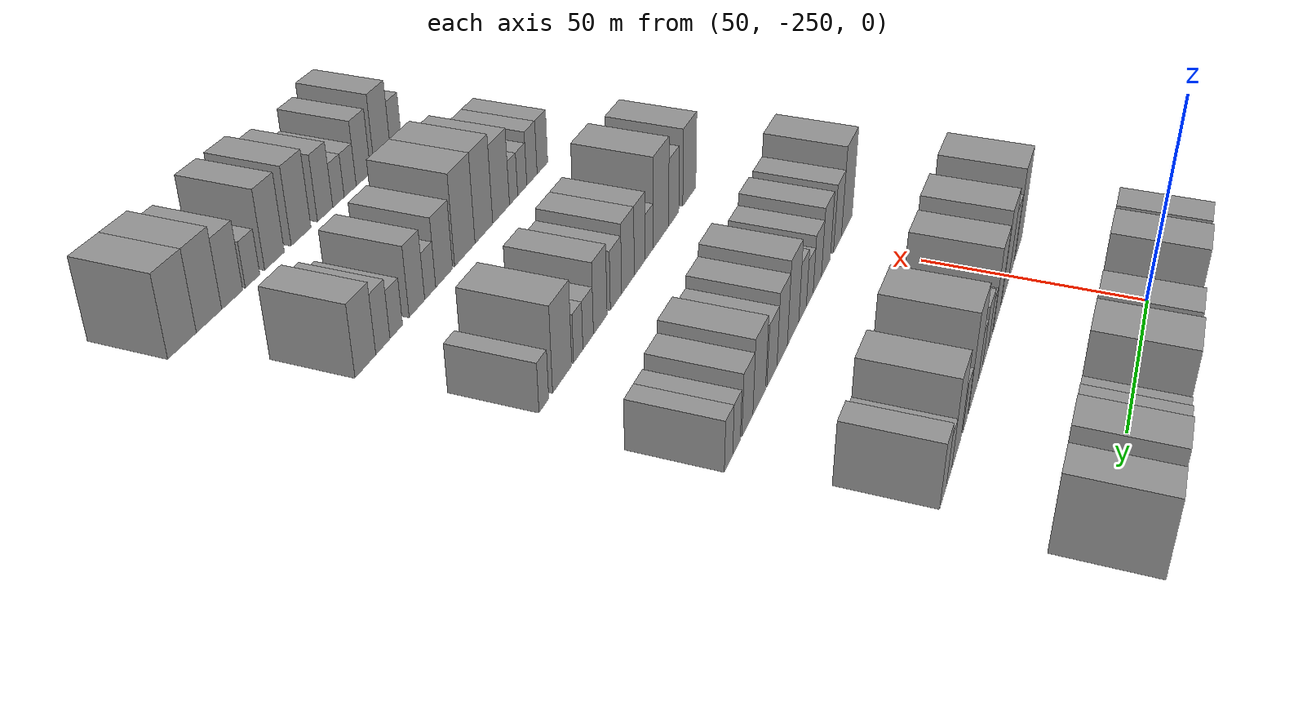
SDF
<sdf version="1.6">
 <world name="default">
  <model name="building_39">
   <static>1</static>
   <pose>50.0000 -256.7298 0 0.000000 0.000000 0.000000</pose>
   <link name="link">
    <pose>0 0 10.50 0 0 0</pose>
    <collision name="collision"><geometry><box><size>20.0000 8.8016 21.0000</size></box></geometry></collision>
    <visual name="visual">
     <cast_shadows>0</cast_shadows>
     <geometry><box><size>20.0000 8.8016 21.0000</size></box></geometry>
     <material>
      <script>
       <uri>model://grey_wall/materials/scripts</uri>
       <uri>model://grey_wall/materials/textures</uri>
       <name>vrc/grey_wall</name>
      </script>
     </material>
    </visual>
   </link>
  </model>
  <model name="building_40">
   <static>1</static>
   <pose>50.0000 -248.9597 0 0.000000 0.000000 0.000000</pose>
   <link name="link">
    <pose>0 0 7.50 0 0 0</pose>
    <collision name="collision"><geometry><box><size>20.0000 6.7386 15.0000</size></box></geometry></collision>
    <visual name="visual">
     <cast_shadows>0</cast_shadows>
     <geometry><box><size>20.0000 6.7386 15.0000</size></box></geometry>
     <material>
      <script>
       <uri>model://grey_wall/materials/scripts</uri>
       <uri>model://grey_wall/materials/textures</uri>
       <name>vrc/grey_wall</name>
      </script>
     </material>
    </visual>
   </link>
  </model>
  <model name="building_41">
   <static>1</static>
   <pose>50.0000 -240.0426 0 0.000000 0.000000 0.000000</pose>
   <link name="link">
    <pose>0 0 12.00 0 0 0</pose>
    <collision name="collision"><geometry><box><size>20.0000 11.0955 24.0000</size></box></geometry></collision>
    <visual name="visual">
     <cast_shadows>0</cast_shadows>
     <geometry><box><size>20.0000 11.0955 24.0000</size></box></geometry>
     <material>
      <script>
       <uri>model://grey_wall/materials/scripts</uri>
       <uri>model://grey_wall/materials/textures</uri>
       <name>vrc/grey_wall</name>
      </script>
     </material>
    </visual>
   </link>
  </model>
  <model name="building_42">
   <static>1</static>
   <pose>50.0000 -231.9525 0 0.000000 0.000000 0.000000</pose>
   <link name="link">
    <pose>0 0 6.00 0 0 0</pose>
    <collision name="collision"><geometry><box><size>20.0000 5.0847 12.0000</size></box></geometry></collision>
    <visual name="visual">
     <cast_shadows>0</cast_shadows>
     <geometry><box><size>20.0000 5.0847 12.0000</size></box></geometry>
     <material>
      <script>
       <uri>model://grey_wall/materials/scripts</uri>
       <uri>model://grey_wall/materials/textures</uri>
       <name>vrc/grey_wall</name>
      </script>
     </material>
    </visual>
   </link>
  </model>
  <model name="building_43">
   <static>1</static>
   <pose>50.0000 -226.9144 0 0.000000 0.000000 0.000000</pose>
   <link name="link">
    <pose>0 0 6.00 0 0 0</pose>
    <collision name="collision"><geometry><box><size>20.0000 4.9913 12.0000</size></box></geometry></collision>
    <visual name="visual">
     <cast_shadows>0</cast_shadows>
     <geometry><box><size>20.0000 4.9913 12.0000</size></box></geometry>
     <material>
      <script>
       <uri>model://grey_wall/materials/scripts</uri>
       <uri>model://grey_wall/materials/textures</uri>
       <name>vrc/grey_wall</name>
      </script>
     </material>
    </visual>
   </link>
  </model>
  <model name="building_44">
   <static>1</static>
   <pose>50.0000 -219.6413 0 0.000000 0.000000 0.000000</pose>
   <link name="link">
    <pose>0 0 10.50 0 0 0</pose>
    <collision name="collision"><geometry><box><size>20.0000 9.5550 21.0000</size></box></geometry></collision>
    <visual name="visual">
     <cast_shadows>0</cast_shadows>
     <geometry><box><size>20.0000 9.5550 21.0000</size></box></geometry>
     <material>
      <script>
       <uri>model://grey_wall/materials/scripts</uri>
       <uri>model://grey_wall/materials/textures</uri>
       <name>vrc/grey_wall</name>
      </script>
     </material>
    </visual>
   </link>
  </model>
  <model name="building_45">
   <static>1</static>
   <pose>50.0000 -212.1446 0 0.000000 0.000000 0.000000</pose>
   <link name="link">
    <pose>0 0 6.00 0 0 0</pose>
    <collision name="collision"><geometry><box><size>20.0000 5.4385 12.0000</size></box></geometry></collision>
    <visual name="visual">
     <cast_shadows>0</cast_shadows>
     <geometry><box><size>20.0000 5.4385 12.0000</size></box></geometry>
     <material>
      <script>
       <uri>model://grey_wall/materials/scripts</uri>
       <uri>model://grey_wall/materials/textures</uri>
       <name>vrc/grey_wall</name>
      </script>
     </material>
    </visual>
   </link>
  </model>
  <model name="building_46">
   <static>1</static>
   <pose>50.0000 -202.5630 0 0.000000 0.000000 0.000000</pose>
   <link name="link">
    <pose>0 0 12.00 0 0 0</pose>
    <collision name="collision"><geometry><box><size>20.0000 11.7247 24.0000</size></box></geometry></collision>
    <visual name="visual">
     <cast_shadows>0</cast_shadows>
     <geometry><box><size>20.0000 11.7247 24.0000</size></box></geometry>
     <material>
      <script>
       <uri>model://grey_wall/materials/scripts</uri>
       <uri>model://grey_wall/materials/textures</uri>
       <name>vrc/grey_wall</name>
      </script>
     </material>
    </visual>
   </link>
  </model>
  <model name="building_47">
   <static>1</static>
   <pose>50.0000 -191.1888 0 0.000000 0.000000 0.000000</pose>
   <link name="link">
    <pose>0 0 7.50 0 0 0</pose>
    <collision name="collision"><geometry><box><size>20.0000 7.0238 15.0000</size></box></geometry></collision>
    <visual name="visual">
     <cast_shadows>0</cast_shadows>
     <geometry><box><size>20.0000 7.0238 15.0000</size></box></geometry>
     <material>
      <script>
       <uri>model://grey_wall/materials/scripts</uri>
       <uri>model://grey_wall/materials/textures</uri>
       <name>vrc/grey_wall</name>
      </script>
     </material>
    </visual>
   </link>
  </model>
  <model name="building_48">
   <static>1</static>
   <pose>50.0000 -183.8771 0 0.000000 0.000000 0.000000</pose>
   <link name="link">
    <pose>0 0 9.00 0 0 0</pose>
    <collision name="collision"><geometry><box><size>20.0000 7.5996 18.0000</size></box></geometry></collision>
    <visual name="visual">
     <cast_shadows>0</cast_shadows>
     <geometry><box><size>20.0000 7.5996 18.0000</size></box></geometry>
     <material>
      <script>
       <uri>model://grey_wall/materials/scripts</uri>
       <uri>model://grey_wall/materials/textures</uri>
       <name>vrc/grey_wall</name>
      </script>
     </material>
    </visual>
   </link>
  </model>
  <model name="building_49">
   <static>1</static>
   <pose>50.0000 -175.2569 0 0.000000 0.000000 0.000000</pose>
   <link name="link">
    <pose>0 0 10.50 0 0 0</pose>
    <collision name="collision"><geometry><box><size>20.0000 9.6407 21.0000</size></box></geometry></collision>
    <visual name="visual">
     <cast_shadows>0</cast_shadows>
     <geometry><box><size>20.0000 9.6407 21.0000</size></box></geometry>
     <material>
      <script>
       <uri>model://grey_wall/materials/scripts</uri>
       <uri>model://grey_wall/materials/textures</uri>
       <name>vrc/grey_wall</name>
      </script>
     </material>
    </visual>
   </link>
  </model>
  <model name="building_50">
   <static>1</static>
   <pose>50.0000 -164.9805 0 0.000000 0.000000 0.000000</pose>
   <link name="link">
    <pose>0 0 9.00 0 0 0</pose>
    <collision name="collision"><geometry><box><size>20.0000 8.9122 18.0000</size></box></geometry></collision>
    <visual name="visual">
     <cast_shadows>0</cast_shadows>
     <geometry><box><size>20.0000 8.9122 18.0000</size></box></geometry>
     <material>
      <script>
       <uri>model://grey_wall/materials/scripts</uri>
       <uri>model://grey_wall/materials/textures</uri>
       <name>vrc/grey_wall</name>
      </script>
     </material>
    </visual>
   </link>
  </model>
  <model name="building_167">
   <static>1</static>
   <pose>90.0000 -263.0146 0 0.000000 0.000000 0.000000</pose>
   <link name="link">
    <pose>0 0 12.00 0 0 0</pose>
    <collision name="collision"><geometry><box><size>20.0000 11.8936 24.0000</size></box></geometry></collision>
    <visual name="visual">
     <cast_shadows>0</cast_shadows>
     <geometry><box><size>20.0000 11.8936 24.0000</size></box></geometry>
     <material>
      <script>
       <uri>model://grey_wall/materials/scripts</uri>
       <uri>model://grey_wall/materials/textures</uri>
       <name>vrc/grey_wall</name>
      </script>
     </material>
    </visual>
   </link>
  </model>
  <model name="building_168">
   <static>1</static>
   <pose>90.0000 -251.8723 0 0.000000 0.000000 0.000000</pose>
   <link name="link">
    <pose>0 0 9.00 0 0 0</pose>
    <collision name="collision"><geometry><box><size>20.0000 8.3909 18.0000</size></box></geometry></collision>
    <visual name="visual">
     <cast_shadows>0</cast_shadows>
     <geometry><box><size>20.0000 8.3909 18.0000</size></box></geometry>
     <material>
      <script>
       <uri>model://grey_wall/materials/scripts</uri>
       <uri>model://grey_wall/materials/textures</uri>
       <name>vrc/grey_wall</name>
      </script>
     </material>
    </visual>
   </link>
  </model>
  <model name="building_169">
   <static>1</static>
   <pose>90.0000 -242.3842 0 0.000000 0.000000 0.000000</pose>
   <link name="link">
    <pose>0 0 12.00 0 0 0</pose>
    <collision name="collision"><geometry><box><size>20.0000 10.5854 24.0000</size></box></geometry></collision>
    <visual name="visual">
     <cast_shadows>0</cast_shadows>
     <geometry><box><size>20.0000 10.5854 24.0000</size></box></geometry>
     <material>
      <script>
       <uri>model://grey_wall/materials/scripts</uri>
       <uri>model://grey_wall/materials/textures</uri>
       <name>vrc/grey_wall</name>
      </script>
     </material>
    </visual>
   </link>
  </model>
  <model name="building_170">
   <static>1</static>
   <pose>90.0000 -231.0860 0 0.000000 0.000000 0.000000</pose>
   <link name="link">
    <pose>0 0 10.50 0 0 0</pose>
    <collision name="collision"><geometry><box><size>20.0000 10.0109 21.0000</size></box></geometry></collision>
    <visual name="visual">
     <cast_shadows>0</cast_shadows>
     <geometry><box><size>20.0000 10.0109 21.0000</size></box></geometry>
     <material>
      <script>
       <uri>model://grey_wall/materials/scripts</uri>
       <uri>model://grey_wall/materials/textures</uri>
       <name>vrc/grey_wall</name>
      </script>
     </material>
    </visual>
   </link>
  </model>
  <model name="building_171">
   <static>1</static>
   <pose>90.0000 -222.4510 0 0.000000 0.000000 0.000000</pose>
   <link name="link">
    <pose>0 0 6.00 0 0 0</pose>
    <collision name="collision"><geometry><box><size>20.0000 5.2591 12.0000</size></box></geometry></collision>
    <visual name="visual">
     <cast_shadows>0</cast_shadows>
     <geometry><box><size>20.0000 5.2591 12.0000</size></box></geometry>
     <material>
      <script>
       <uri>model://grey_wall/materials/scripts</uri>
       <uri>model://grey_wall/materials/textures</uri>
       <name>vrc/grey_wall</name>
      </script>
     </material>
    </visual>
   </link>
  </model>
  <model name="building_172">
   <static>1</static>
   <pose>90.0000 -216.1184 0 0.000000 0.000000 0.000000</pose>
   <link name="link">
    <pose>0 0 7.50 0 0 0</pose>
    <collision name="collision"><geometry><box><size>20.0000 7.4061 15.0000</size></box></geometry></collision>
    <visual name="visual">
     <cast_shadows>0</cast_shadows>
     <geometry><box><size>20.0000 7.4061 15.0000</size></box></geometry>
     <material>
      <script>
       <uri>model://grey_wall/materials/scripts</uri>
       <uri>model://grey_wall/materials/textures</uri>
       <name>vrc/grey_wall</name>
      </script>
     </material>
    </visual>
   </link>
  </model>
  <model name="building_173">
   <static>1</static>
   <pose>90.0000 -209.7845 0 0.000000 0.000000 0.000000</pose>
   <link name="link">
    <pose>0 0 6.00 0 0 0</pose>
    <collision name="collision"><geometry><box><size>20.0000 5.2618 12.0000</size></box></geometry></collision>
    <visual name="visual">
     <cast_shadows>0</cast_shadows>
     <geometry><box><size>20.0000 5.2618 12.0000</size></box></geometry>
     <material>
      <script>
       <uri>model://grey_wall/materials/scripts</uri>
       <uri>model://grey_wall/materials/textures</uri>
       <name>vrc/grey_wall</name>
      </script>
     </material>
    </visual>
   </link>
  </model>
  <model name="building_174">
   <static>1</static>
   <pose>90.0000 -201.4237 0 0.000000 0.000000 0.000000</pose>
   <link name="link">
    <pose>0 0 12.00 0 0 0</pose>
    <collision name="collision"><geometry><box><size>20.0000 11.4596 24.0000</size></box></geometry></collision>
    <visual name="visual">
     <cast_shadows>0</cast_shadows>
     <geometry><box><size>20.0000 11.4596 24.0000</size></box></geometry>
     <material>
      <script>
       <uri>model://grey_wall/materials/scripts</uri>
       <uri>model://grey_wall/materials/textures</uri>
       <name>vrc/grey_wall</name>
      </script>
     </material>
    </visual>
   </link>
  </model>
  <model name="building_175">
   <static>1</static>
   <pose>90.0000 -192.0570 0 0.000000 0.000000 0.000000</pose>
   <link name="link">
    <pose>0 0 6.00 0 0 0</pose>
    <collision name="collision"><geometry><box><size>20.0000 5.2739 12.0000</size></box></geometry></collision>
    <visual name="visual">
     <cast_shadows>0</cast_shadows>
     <geometry><box><size>20.0000 5.2739 12.0000</size></box></geometry>
     <material>
      <script>
       <uri>model://grey_wall/materials/scripts</uri>
       <uri>model://grey_wall/materials/textures</uri>
       <name>vrc/grey_wall</name>
      </script>
     </material>
    </visual>
   </link>
  </model>
  <model name="building_176">
   <static>1</static>
   <pose>90.0000 -182.5187 0 0.000000 0.000000 0.000000</pose>
   <link name="link">
    <pose>0 0 10.50 0 0 0</pose>
    <collision name="collision"><geometry><box><size>20.0000 9.8026 21.0000</size></box></geometry></collision>
    <visual name="visual">
     <cast_shadows>0</cast_shadows>
     <geometry><box><size>20.0000 9.8026 21.0000</size></box></geometry>
     <material>
      <script>
       <uri>model://grey_wall/materials/scripts</uri>
       <uri>model://grey_wall/materials/textures</uri>
       <name>vrc/grey_wall</name>
      </script>
     </material>
    </visual>
   </link>
  </model>
  <model name="building_177">
   <static>1</static>
   <pose>90.0000 -174.9093 0 0.000000 0.000000 0.000000</pose>
   <link name="link">
    <pose>0 0 6.00 0 0 0</pose>
    <collision name="collision"><geometry><box><size>20.0000 5.4163 12.0000</size></box></geometry></collision>
    <visual name="visual">
     <cast_shadows>0</cast_shadows>
     <geometry><box><size>20.0000 5.4163 12.0000</size></box></geometry>
     <material>
      <script>
       <uri>model://grey_wall/materials/scripts</uri>
       <uri>model://grey_wall/materials/textures</uri>
       <name>vrc/grey_wall</name>
      </script>
     </material>
    </visual>
   </link>
  </model>
  <model name="building_178">
   <static>1</static>
   <pose>90.0000 -168.9414 0 0.000000 0.000000 0.000000</pose>
   <link name="link">
    <pose>0 0 7.50 0 0 0</pose>
    <collision name="collision"><geometry><box><size>20.0000 6.5194 15.0000</size></box></geometry></collision>
    <visual name="visual">
     <cast_shadows>0</cast_shadows>
     <geometry><box><size>20.0000 6.5194 15.0000</size></box></geometry>
     <material>
      <script>
       <uri>model://grey_wall/materials/scripts</uri>
       <uri>model://grey_wall/materials/textures</uri>
       <name>vrc/grey_wall</name>
      </script>
     </material>
    </visual>
   </link>
  </model>
  <model name="building_309">
   <static>1</static>
   <pose>130.0000 -259.5459 0 0.000000 0.000000 0.000000</pose>
   <link name="link">
    <pose>0 0 12.00 0 0 0</pose>
    <collision name="collision"><geometry><box><size>20.0000 10.7880 24.0000</size></box></geometry></collision>
    <visual name="visual">
     <cast_shadows>0</cast_shadows>
     <geometry><box><size>20.0000 10.7880 24.0000</size></box></geometry>
     <material>
      <script>
       <uri>model://grey_wall/materials/scripts</uri>
       <uri>model://grey_wall/materials/textures</uri>
       <name>vrc/grey_wall</name>
      </script>
     </material>
    </visual>
   </link>
  </model>
  <model name="building_310">
   <static>1</static>
   <pose>130.0000 -250.3165 0 0.000000 0.000000 0.000000</pose>
   <link name="link">
    <pose>0 0 9.00 0 0 0</pose>
    <collision name="collision"><geometry><box><size>20.0000 7.6708 18.0000</size></box></geometry></collision>
    <visual name="visual">
     <cast_shadows>0</cast_shadows>
     <geometry><box><size>20.0000 7.6708 18.0000</size></box></geometry>
     <material>
      <script>
       <uri>model://grey_wall/materials/scripts</uri>
       <uri>model://grey_wall/materials/textures</uri>
       <name>vrc/grey_wall</name>
      </script>
     </material>
    </visual>
   </link>
  </model>
  <model name="building_311">
   <static>1</static>
   <pose>130.0000 -239.3849 0 0.000000 0.000000 0.000000</pose>
   <link name="link">
    <pose>0 0 9.00 0 0 0</pose>
    <collision name="collision"><geometry><box><size>20.0000 8.1924 18.0000</size></box></geometry></collision>
    <visual name="visual">
     <cast_shadows>0</cast_shadows>
     <geometry><box><size>20.0000 8.1924 18.0000</size></box></geometry>
     <material>
      <script>
       <uri>model://grey_wall/materials/scripts</uri>
       <uri>model://grey_wall/materials/textures</uri>
       <name>vrc/grey_wall</name>
      </script>
     </material>
    </visual>
   </link>
  </model>
  <model name="building_312">
   <static>1</static>
   <pose>130.0000 -231.6470 0 0.000000 0.000000 0.000000</pose>
   <link name="link">
    <pose>0 0 7.50 0 0 0</pose>
    <collision name="collision"><geometry><box><size>20.0000 7.2834 15.0000</size></box></geometry></collision>
    <visual name="visual">
     <cast_shadows>0</cast_shadows>
     <geometry><box><size>20.0000 7.2834 15.0000</size></box></geometry>
     <material>
      <script>
       <uri>model://grey_wall/materials/scripts</uri>
       <uri>model://grey_wall/materials/textures</uri>
       <name>vrc/grey_wall</name>
      </script>
     </material>
    </visual>
   </link>
  </model>
  <model name="building_313">
   <static>1</static>
   <pose>130.0000 -225.0626 0 0.000000 0.000000 0.000000</pose>
   <link name="link">
    <pose>0 0 6.00 0 0 0</pose>
    <collision name="collision"><geometry><box><size>20.0000 5.8854 12.0000</size></box></geometry></collision>
    <visual name="visual">
     <cast_shadows>0</cast_shadows>
     <geometry><box><size>20.0000 5.8854 12.0000</size></box></geometry>
     <material>
      <script>
       <uri>model://grey_wall/materials/scripts</uri>
       <uri>model://grey_wall/materials/textures</uri>
       <name>vrc/grey_wall</name>
      </script>
     </material>
    </visual>
   </link>
  </model>
  <model name="building_314">
   <static>1</static>
   <pose>130.0000 -218.9593 0 0.000000 0.000000 0.000000</pose>
   <link name="link">
    <pose>0 0 7.50 0 0 0</pose>
    <collision name="collision"><geometry><box><size>20.0000 6.3211 15.0000</size></box></geometry></collision>
    <visual name="visual">
     <cast_shadows>0</cast_shadows>
     <geometry><box><size>20.0000 6.3211 15.0000</size></box></geometry>
     <material>
      <script>
       <uri>model://grey_wall/materials/scripts</uri>
       <uri>model://grey_wall/materials/textures</uri>
       <name>vrc/grey_wall</name>
      </script>
     </material>
    </visual>
   </link>
  </model>
  <model name="building_315">
   <static>1</static>
   <pose>130.0000 -211.2364 0 0.000000 0.000000 0.000000</pose>
   <link name="link">
    <pose>0 0 10.50 0 0 0</pose>
    <collision name="collision"><geometry><box><size>20.0000 9.1247 21.0000</size></box></geometry></collision>
    <visual name="visual">
     <cast_shadows>0</cast_shadows>
     <geometry><box><size>20.0000 9.1247 21.0000</size></box></geometry>
     <material>
      <script>
       <uri>model://grey_wall/materials/scripts</uri>
       <uri>model://grey_wall/materials/textures</uri>
       <name>vrc/grey_wall</name>
      </script>
     </material>
    </visual>
   </link>
  </model>
  <model name="building_316">
   <static>1</static>
   <pose>130.0000 -202.6644 0 0.000000 0.000000 0.000000</pose>
   <link name="link">
    <pose>0 0 9.00 0 0 0</pose>
    <collision name="collision"><geometry><box><size>20.0000 8.0192 18.0000</size></box></geometry></collision>
    <visual name="visual">
     <cast_shadows>0</cast_shadows>
     <geometry><box><size>20.0000 8.0192 18.0000</size></box></geometry>
     <material>
      <script>
       <uri>model://grey_wall/materials/scripts</uri>
       <uri>model://grey_wall/materials/textures</uri>
       <name>vrc/grey_wall</name>
      </script>
     </material>
    </visual>
   </link>
  </model>
  <model name="building_317">
   <static>1</static>
   <pose>130.0000 -194.9638 0 0.000000 0.000000 0.000000</pose>
   <link name="link">
    <pose>0 0 7.50 0 0 0</pose>
    <collision name="collision"><geometry><box><size>20.0000 7.3819 15.0000</size></box></geometry></collision>
    <visual name="visual">
     <cast_shadows>0</cast_shadows>
     <geometry><box><size>20.0000 7.3819 15.0000</size></box></geometry>
     <material>
      <script>
       <uri>model://grey_wall/materials/scripts</uri>
       <uri>model://grey_wall/materials/textures</uri>
       <name>vrc/grey_wall</name>
      </script>
     </material>
    </visual>
   </link>
  </model>
  <model name="building_318">
   <static>1</static>
   <pose>130.0000 -185.8036 0 0.000000 0.000000 0.000000</pose>
   <link name="link">
    <pose>0 0 9.00 0 0 0</pose>
    <collision name="collision"><geometry><box><size>20.0000 8.9386 18.0000</size></box></geometry></collision>
    <visual name="visual">
     <cast_shadows>0</cast_shadows>
     <geometry><box><size>20.0000 8.9386 18.0000</size></box></geometry>
     <material>
      <script>
       <uri>model://grey_wall/materials/scripts</uri>
       <uri>model://grey_wall/materials/textures</uri>
       <name>vrc/grey_wall</name>
      </script>
     </material>
    </visual>
   </link>
  </model>
  <model name="building_319">
   <static>1</static>
   <pose>130.0000 -177.5914 0 0.000000 0.000000 0.000000</pose>
   <link name="link">
    <pose>0 0 7.50 0 0 0</pose>
    <collision name="collision"><geometry><box><size>20.0000 7.4857 15.0000</size></box></geometry></collision>
    <visual name="visual">
     <cast_shadows>0</cast_shadows>
     <geometry><box><size>20.0000 7.4857 15.0000</size></box></geometry>
     <material>
      <script>
       <uri>model://grey_wall/materials/scripts</uri>
       <uri>model://grey_wall/materials/textures</uri>
       <name>vrc/grey_wall</name>
      </script>
     </material>
    </visual>
   </link>
  </model>
  <model name="building_320">
   <static>1</static>
   <pose>130.0000 -170.3745 0 0.000000 0.000000 0.000000</pose>
   <link name="link">
    <pose>0 0 6.00 0 0 0</pose>
    <collision name="collision"><geometry><box><size>20.0000 4.9482 12.0000</size></box></geometry></collision>
    <visual name="visual">
     <cast_shadows>0</cast_shadows>
     <geometry><box><size>20.0000 4.9482 12.0000</size></box></geometry>
     <material>
      <script>
       <uri>model://grey_wall/materials/scripts</uri>
       <uri>model://grey_wall/materials/textures</uri>
       <name>vrc/grey_wall</name>
      </script>
     </material>
    </visual>
   </link>
  </model>
  <model name="building_321">
   <static>1</static>
   <pose>130.0000 -165.2555 0 0.000000 0.000000 0.000000</pose>
   <link name="link">
    <pose>0 0 6.00 0 0 0</pose>
    <collision name="collision"><geometry><box><size>20.0000 5.2898 12.0000</size></box></geometry></collision>
    <visual name="visual">
     <cast_shadows>0</cast_shadows>
     <geometry><box><size>20.0000 5.2898 12.0000</size></box></geometry>
     <material>
      <script>
       <uri>model://grey_wall/materials/scripts</uri>
       <uri>model://grey_wall/materials/textures</uri>
       <name>vrc/grey_wall</name>
      </script>
     </material>
    </visual>
   </link>
  </model>
  <model name="building_448">
   <static>1</static>
   <pose>170.0000 -260.7798 0 0.000000 0.000000 0.000000</pose>
   <link name="link">
    <pose>0 0 10.50 0 0 0</pose>
    <collision name="collision"><geometry><box><size>20.0000 9.9936 21.0000</size></box></geometry></collision>
    <visual name="visual">
     <cast_shadows>0</cast_shadows>
     <geometry><box><size>20.0000 9.9936 21.0000</size></box></geometry>
     <material>
      <script>
       <uri>model://grey_wall/materials/scripts</uri>
       <uri>model://grey_wall/materials/textures</uri>
       <name>vrc/grey_wall</name>
      </script>
     </material>
    </visual>
   </link>
  </model>
  <model name="building_449">
   <static>1</static>
   <pose>170.0000 -249.1024 0 0.000000 0.000000 0.000000</pose>
   <link name="link">
    <pose>0 0 9.00 0 0 0</pose>
    <collision name="collision"><geometry><box><size>20.0000 7.3612 18.0000</size></box></geometry></collision>
    <visual name="visual">
     <cast_shadows>0</cast_shadows>
     <geometry><box><size>20.0000 7.3612 18.0000</size></box></geometry>
     <material>
      <script>
       <uri>model://grey_wall/materials/scripts</uri>
       <uri>model://grey_wall/materials/textures</uri>
       <name>vrc/grey_wall</name>
      </script>
     </material>
    </visual>
   </link>
  </model>
  <model name="building_450">
   <static>1</static>
   <pose>170.0000 -239.9937 0 0.000000 0.000000 0.000000</pose>
   <link name="link">
    <pose>0 0 12.00 0 0 0</pose>
    <collision name="collision"><geometry><box><size>20.0000 10.8562 24.0000</size></box></geometry></collision>
    <visual name="visual">
     <cast_shadows>0</cast_shadows>
     <geometry><box><size>20.0000 10.8562 24.0000</size></box></geometry>
     <material>
      <script>
       <uri>model://grey_wall/materials/scripts</uri>
       <uri>model://grey_wall/materials/textures</uri>
       <name>vrc/grey_wall</name>
      </script>
     </material>
    </visual>
   </link>
  </model>
  <model name="building_451">
   <static>1</static>
   <pose>170.0000 -231.8443 0 0.000000 0.000000 0.000000</pose>
   <link name="link">
    <pose>0 0 6.00 0 0 0</pose>
    <collision name="collision"><geometry><box><size>20.0000 5.4425 12.0000</size></box></geometry></collision>
    <visual name="visual">
     <cast_shadows>0</cast_shadows>
     <geometry><box><size>20.0000 5.4425 12.0000</size></box></geometry>
     <material>
      <script>
       <uri>model://grey_wall/materials/scripts</uri>
       <uri>model://grey_wall/materials/textures</uri>
       <name>vrc/grey_wall</name>
      </script>
     </material>
    </visual>
   </link>
  </model>
  <model name="building_452">
   <static>1</static>
   <pose>170.0000 -225.4843 0 0.000000 0.000000 0.000000</pose>
   <link name="link">
    <pose>0 0 9.00 0 0 0</pose>
    <collision name="collision"><geometry><box><size>20.0000 7.2774 18.0000</size></box></geometry></collision>
    <visual name="visual">
     <cast_shadows>0</cast_shadows>
     <geometry><box><size>20.0000 7.2774 18.0000</size></box></geometry>
     <material>
      <script>
       <uri>model://grey_wall/materials/scripts</uri>
       <uri>model://grey_wall/materials/textures</uri>
       <name>vrc/grey_wall</name>
      </script>
     </material>
    </visual>
   </link>
  </model>
  <model name="building_453">
   <static>1</static>
   <pose>170.0000 -217.8162 0 0.000000 0.000000 0.000000</pose>
   <link name="link">
    <pose>0 0 9.00 0 0 0</pose>
    <collision name="collision"><geometry><box><size>20.0000 8.0588 18.0000</size></box></geometry></collision>
    <visual name="visual">
     <cast_shadows>0</cast_shadows>
     <geometry><box><size>20.0000 8.0588 18.0000</size></box></geometry>
     <material>
      <script>
       <uri>model://grey_wall/materials/scripts</uri>
       <uri>model://grey_wall/materials/textures</uri>
       <name>vrc/grey_wall</name>
      </script>
     </material>
    </visual>
   </link>
  </model>
  <model name="building_454">
   <static>1</static>
   <pose>170.0000 -210.3371 0 0.000000 0.000000 0.000000</pose>
   <link name="link">
    <pose>0 0 7.50 0 0 0</pose>
    <collision name="collision"><geometry><box><size>20.0000 6.8994 15.0000</size></box></geometry></collision>
    <visual name="visual">
     <cast_shadows>0</cast_shadows>
     <geometry><box><size>20.0000 6.8994 15.0000</size></box></geometry>
     <material>
      <script>
       <uri>model://grey_wall/materials/scripts</uri>
       <uri>model://grey_wall/materials/textures</uri>
       <name>vrc/grey_wall</name>
      </script>
     </material>
    </visual>
   </link>
  </model>
  <model name="building_455">
   <static>1</static>
   <pose>170.0000 -200.8837 0 0.000000 0.000000 0.000000</pose>
   <link name="link">
    <pose>0 0 9.00 0 0 0</pose>
    <collision name="collision"><geometry><box><size>20.0000 8.0074 18.0000</size></box></geometry></collision>
    <visual name="visual">
     <cast_shadows>0</cast_shadows>
     <geometry><box><size>20.0000 8.0074 18.0000</size></box></geometry>
     <material>
      <script>
       <uri>model://grey_wall/materials/scripts</uri>
       <uri>model://grey_wall/materials/textures</uri>
       <name>vrc/grey_wall</name>
      </script>
     </material>
    </visual>
   </link>
  </model>
  <model name="building_456">
   <static>1</static>
   <pose>170.0000 -193.8971 0 0.000000 0.000000 0.000000</pose>
   <link name="link">
    <pose>0 0 6.00 0 0 0</pose>
    <collision name="collision"><geometry><box><size>20.0000 5.9659 12.0000</size></box></geometry></collision>
    <visual name="visual">
     <cast_shadows>0</cast_shadows>
     <geometry><box><size>20.0000 5.9659 12.0000</size></box></geometry>
     <material>
      <script>
       <uri>model://grey_wall/materials/scripts</uri>
       <uri>model://grey_wall/materials/textures</uri>
       <name>vrc/grey_wall</name>
      </script>
     </material>
    </visual>
   </link>
  </model>
  <model name="building_457">
   <static>1</static>
   <pose>170.0000 -188.3424 0 0.000000 0.000000 0.000000</pose>
   <link name="link">
    <pose>0 0 6.00 0 0 0</pose>
    <collision name="collision"><geometry><box><size>20.0000 5.1435 12.0000</size></box></geometry></collision>
    <visual name="visual">
     <cast_shadows>0</cast_shadows>
     <geometry><box><size>20.0000 5.1435 12.0000</size></box></geometry>
     <material>
      <script>
       <uri>model://grey_wall/materials/scripts</uri>
       <uri>model://grey_wall/materials/textures</uri>
       <name>vrc/grey_wall</name>
      </script>
     </material>
    </visual>
   </link>
  </model>
  <model name="building_458">
   <static>1</static>
   <pose>170.0000 -179.7180 0 0.000000 0.000000 0.000000</pose>
   <link name="link">
    <pose>0 0 10.50 0 0 0</pose>
    <collision name="collision"><geometry><box><size>20.0000 10.1053 21.0000</size></box></geometry></collision>
    <visual name="visual">
     <cast_shadows>0</cast_shadows>
     <geometry><box><size>20.0000 10.1053 21.0000</size></box></geometry>
     <material>
      <script>
       <uri>model://grey_wall/materials/scripts</uri>
       <uri>model://grey_wall/materials/textures</uri>
       <name>vrc/grey_wall</name>
      </script>
     </material>
    </visual>
   </link>
  </model>
  <model name="building_459">
   <static>1</static>
   <pose>170.0000 -170.2269 0 0.000000 0.000000 0.000000</pose>
   <link name="link">
    <pose>0 0 6.00 0 0 0</pose>
    <collision name="collision"><geometry><box><size>20.0000 4.8769 12.0000</size></box></geometry></collision>
    <visual name="visual">
     <cast_shadows>0</cast_shadows>
     <geometry><box><size>20.0000 4.8769 12.0000</size></box></geometry>
     <material>
      <script>
       <uri>model://grey_wall/materials/scripts</uri>
       <uri>model://grey_wall/materials/textures</uri>
       <name>vrc/grey_wall</name>
      </script>
     </material>
    </visual>
   </link>
  </model>
  <model name="building_584">
   <static>1</static>
   <pose>210.0000 -262.3412 0 0.000000 0.000000 0.000000</pose>
   <link name="link">
    <pose>0 0 7.50 0 0 0</pose>
    <collision name="collision"><geometry><box><size>20.0000 6.7735 15.0000</size></box></geometry></collision>
    <visual name="visual">
     <cast_shadows>0</cast_shadows>
     <geometry><box><size>20.0000 6.7735 15.0000</size></box></geometry>
     <material>
      <script>
       <uri>model://grey_wall/materials/scripts</uri>
       <uri>model://grey_wall/materials/textures</uri>
       <name>vrc/grey_wall</name>
      </script>
     </material>
    </visual>
   </link>
  </model>
  <model name="building_585">
   <static>1</static>
   <pose>210.0000 -255.7316 0 0.000000 0.000000 0.000000</pose>
   <link name="link">
    <pose>0 0 7.50 0 0 0</pose>
    <collision name="collision"><geometry><box><size>20.0000 6.4458 15.0000</size></box></geometry></collision>
    <visual name="visual">
     <cast_shadows>0</cast_shadows>
     <geometry><box><size>20.0000 6.4458 15.0000</size></box></geometry>
     <material>
      <script>
       <uri>model://grey_wall/materials/scripts</uri>
       <uri>model://grey_wall/materials/textures</uri>
       <name>vrc/grey_wall</name>
      </script>
     </material>
    </visual>
   </link>
  </model>
  <model name="building_586">
   <static>1</static>
   <pose>210.0000 -249.7387 0 0.000000 0.000000 0.000000</pose>
   <link name="link">
    <pose>0 0 6.00 0 0 0</pose>
    <collision name="collision"><geometry><box><size>20.0000 5.5400 12.0000</size></box></geometry></collision>
    <visual name="visual">
     <cast_shadows>0</cast_shadows>
     <geometry><box><size>20.0000 5.5400 12.0000</size></box></geometry>
     <material>
      <script>
       <uri>model://grey_wall/materials/scripts</uri>
       <uri>model://grey_wall/materials/textures</uri>
       <name>vrc/grey_wall</name>
      </script>
     </material>
    </visual>
   </link>
  </model>
  <model name="building_587">
   <static>1</static>
   <pose>210.0000 -244.5219 0 0.000000 0.000000 0.000000</pose>
   <link name="link">
    <pose>0 0 6.00 0 0 0</pose>
    <collision name="collision"><geometry><box><size>20.0000 4.8936 12.0000</size></box></geometry></collision>
    <visual name="visual">
     <cast_shadows>0</cast_shadows>
     <geometry><box><size>20.0000 4.8936 12.0000</size></box></geometry>
     <material>
      <script>
       <uri>model://grey_wall/materials/scripts</uri>
       <uri>model://grey_wall/materials/textures</uri>
       <name>vrc/grey_wall</name>
      </script>
     </material>
    </visual>
   </link>
  </model>
  <model name="building_588">
   <static>1</static>
   <pose>210.0000 -237.2514 0 0.000000 0.000000 0.000000</pose>
   <link name="link">
    <pose>0 0 10.50 0 0 0</pose>
    <collision name="collision"><geometry><box><size>20.0000 9.6473 21.0000</size></box></geometry></collision>
    <visual name="visual">
     <cast_shadows>0</cast_shadows>
     <geometry><box><size>20.0000 9.6473 21.0000</size></box></geometry>
     <material>
      <script>
       <uri>model://grey_wall/materials/scripts</uri>
       <uri>model://grey_wall/materials/textures</uri>
       <name>vrc/grey_wall</name>
      </script>
     </material>
    </visual>
   </link>
  </model>
  <model name="building_589">
   <static>1</static>
   <pose>210.0000 -227.5210 0 0.000000 0.000000 0.000000</pose>
   <link name="link">
    <pose>0 0 12.00 0 0 0</pose>
    <collision name="collision"><geometry><box><size>20.0000 9.8135 24.0000</size></box></geometry></collision>
    <visual name="visual">
     <cast_shadows>0</cast_shadows>
     <geometry><box><size>20.0000 9.8135 24.0000</size></box></geometry>
     <material>
      <script>
       <uri>model://grey_wall/materials/scripts</uri>
       <uri>model://grey_wall/materials/textures</uri>
       <name>vrc/grey_wall</name>
      </script>
     </material>
    </visual>
   </link>
  </model>
  <model name="building_590">
   <static>1</static>
   <pose>210.0000 -217.2116 0 0.000000 0.000000 0.000000</pose>
   <link name="link">
    <pose>0 0 12.00 0 0 0</pose>
    <collision name="collision"><geometry><box><size>20.0000 10.8054 24.0000</size></box></geometry></collision>
    <visual name="visual">
     <cast_shadows>0</cast_shadows>
     <geometry><box><size>20.0000 10.8054 24.0000</size></box></geometry>
     <material>
      <script>
       <uri>model://grey_wall/materials/scripts</uri>
       <uri>model://grey_wall/materials/textures</uri>
       <name>vrc/grey_wall</name>
      </script>
     </material>
    </visual>
   </link>
  </model>
  <model name="building_591">
   <static>1</static>
   <pose>210.0000 -206.5564 0 0.000000 0.000000 0.000000</pose>
   <link name="link">
    <pose>0 0 9.00 0 0 0</pose>
    <collision name="collision"><geometry><box><size>20.0000 8.5050 18.0000</size></box></geometry></collision>
    <visual name="visual">
     <cast_shadows>0</cast_shadows>
     <geometry><box><size>20.0000 8.5050 18.0000</size></box></geometry>
     <material>
      <script>
       <uri>model://grey_wall/materials/scripts</uri>
       <uri>model://grey_wall/materials/textures</uri>
       <name>vrc/grey_wall</name>
      </script>
     </material>
    </visual>
   </link>
  </model>
  <model name="building_592">
   <static>1</static>
   <pose>210.0000 -199.6069 0 0.000000 0.000000 0.000000</pose>
   <link name="link">
    <pose>0 0 6.00 0 0 0</pose>
    <collision name="collision"><geometry><box><size>20.0000 5.3939 12.0000</size></box></geometry></collision>
    <visual name="visual">
     <cast_shadows>0</cast_shadows>
     <geometry><box><size>20.0000 5.3939 12.0000</size></box></geometry>
     <material>
      <script>
       <uri>model://grey_wall/materials/scripts</uri>
       <uri>model://grey_wall/materials/textures</uri>
       <name>vrc/grey_wall</name>
      </script>
     </material>
    </visual>
   </link>
  </model>
  <model name="building_593">
   <static>1</static>
   <pose>210.0000 -193.2308 0 0.000000 0.000000 0.000000</pose>
   <link name="link">
    <pose>0 0 9.00 0 0 0</pose>
    <collision name="collision"><geometry><box><size>20.0000 7.3583 18.0000</size></box></geometry></collision>
    <visual name="visual">
     <cast_shadows>0</cast_shadows>
     <geometry><box><size>20.0000 7.3583 18.0000</size></box></geometry>
     <material>
      <script>
       <uri>model://grey_wall/materials/scripts</uri>
       <uri>model://grey_wall/materials/textures</uri>
       <name>vrc/grey_wall</name>
      </script>
     </material>
    </visual>
   </link>
  </model>
  <model name="building_594">
   <static>1</static>
   <pose>210.0000 -183.7102 0 0.000000 0.000000 0.000000</pose>
   <link name="link">
    <pose>0 0 6.00 0 0 0</pose>
    <collision name="collision"><geometry><box><size>20.0000 5.6830 12.0000</size></box></geometry></collision>
    <visual name="visual">
     <cast_shadows>0</cast_shadows>
     <geometry><box><size>20.0000 5.6830 12.0000</size></box></geometry>
     <material>
      <script>
       <uri>model://grey_wall/materials/scripts</uri>
       <uri>model://grey_wall/materials/textures</uri>
       <name>vrc/grey_wall</name>
      </script>
     </material>
    </visual>
   </link>
  </model>
  <model name="building_595">
   <static>1</static>
   <pose>210.0000 -177.7602 0 0.000000 0.000000 0.000000</pose>
   <link name="link">
    <pose>0 0 7.50 0 0 0</pose>
    <collision name="collision"><geometry><box><size>20.0000 6.2169 15.0000</size></box></geometry></collision>
    <visual name="visual">
     <cast_shadows>0</cast_shadows>
     <geometry><box><size>20.0000 6.2169 15.0000</size></box></geometry>
     <material>
      <script>
       <uri>model://grey_wall/materials/scripts</uri>
       <uri>model://grey_wall/materials/textures</uri>
       <name>vrc/grey_wall</name>
      </script>
     </material>
    </visual>
   </link>
  </model>
  <model name="building_596">
   <static>1</static>
   <pose>210.0000 -170.2612 0 0.000000 0.000000 0.000000</pose>
   <link name="link">
    <pose>0 0 9.00 0 0 0</pose>
    <collision name="collision"><geometry><box><size>20.0000 8.7811 18.0000</size></box></geometry></collision>
    <visual name="visual">
     <cast_shadows>0</cast_shadows>
     <geometry><box><size>20.0000 8.7811 18.0000</size></box></geometry>
     <material>
      <script>
       <uri>model://grey_wall/materials/scripts</uri>
       <uri>model://grey_wall/materials/textures</uri>
       <name>vrc/grey_wall</name>
      </script>
     </material>
    </visual>
   </link>
  </model>
  <model name="building_728">
   <static>1</static>
   <pose>250.0000 -259.2168 0 0.000000 0.000000 0.000000</pose>
   <link name="link">
    <pose>0 0 7.50 0 0 0</pose>
    <collision name="collision"><geometry><box><size>20.0000 6.0966 15.0000</size></box></geometry></collision>
    <visual name="visual">
     <cast_shadows>0</cast_shadows>
     <geometry><box><size>20.0000 6.0966 15.0000</size></box></geometry>
     <material>
      <script>
       <uri>model://grey_wall/materials/scripts</uri>
       <uri>model://grey_wall/materials/textures</uri>
       <name>vrc/grey_wall</name>
      </script>
     </material>
    </visual>
   </link>
  </model>
  <model name="building_729">
   <static>1</static>
   <pose>250.0000 -251.7960 0 0.000000 0.000000 0.000000</pose>
   <link name="link">
    <pose>0 0 10.50 0 0 0</pose>
    <collision name="collision"><geometry><box><size>20.0000 8.7449 21.0000</size></box></geometry></collision>
    <visual name="visual">
     <cast_shadows>0</cast_shadows>
     <geometry><box><size>20.0000 8.7449 21.0000</size></box></geometry>
     <material>
      <script>
       <uri>model://grey_wall/materials/scripts</uri>
       <uri>model://grey_wall/materials/textures</uri>
       <name>vrc/grey_wall</name>
      </script>
     </material>
    </visual>
   </link>
  </model>
  <model name="building_730">
   <static>1</static>
   <pose>250.0000 -241.7400 0 0.000000 0.000000 0.000000</pose>
   <link name="link">
    <pose>0 0 9.00 0 0 0</pose>
    <collision name="collision"><geometry><box><size>20.0000 7.3671 18.0000</size></box></geometry></collision>
    <visual name="visual">
     <cast_shadows>0</cast_shadows>
     <geometry><box><size>20.0000 7.3671 18.0000</size></box></geometry>
     <material>
      <script>
       <uri>model://grey_wall/materials/scripts</uri>
       <uri>model://grey_wall/materials/textures</uri>
       <name>vrc/grey_wall</name>
      </script>
     </material>
    </visual>
   </link>
  </model>
  <model name="building_731">
   <static>1</static>
   <pose>250.0000 -235.0587 0 0.000000 0.000000 0.000000</pose>
   <link name="link">
    <pose>0 0 6.00 0 0 0</pose>
    <collision name="collision"><geometry><box><size>20.0000 5.9955 12.0000</size></box></geometry></collision>
    <visual name="visual">
     <cast_shadows>0</cast_shadows>
     <geometry><box><size>20.0000 5.9955 12.0000</size></box></geometry>
     <material>
      <script>
       <uri>model://grey_wall/materials/scripts</uri>
       <uri>model://grey_wall/materials/textures</uri>
       <name>vrc/grey_wall</name>
      </script>
     </material>
    </visual>
   </link>
  </model>
  <model name="building_732">
   <static>1</static>
   <pose>250.0000 -229.2849 0 0.000000 0.000000 0.000000</pose>
   <link name="link">
    <pose>0 0 6.00 0 0 0</pose>
    <collision name="collision"><geometry><box><size>20.0000 5.5520 12.0000</size></box></geometry></collision>
    <visual name="visual">
     <cast_shadows>0</cast_shadows>
     <geometry><box><size>20.0000 5.5520 12.0000</size></box></geometry>
     <material>
      <script>
       <uri>model://grey_wall/materials/scripts</uri>
       <uri>model://grey_wall/materials/textures</uri>
       <name>vrc/grey_wall</name>
      </script>
     </material>
    </visual>
   </link>
  </model>
  <model name="building_733">
   <static>1</static>
   <pose>250.0000 -222.8773 0 0.000000 0.000000 0.000000</pose>
   <link name="link">
    <pose>0 0 9.00 0 0 0</pose>
    <collision name="collision"><geometry><box><size>20.0000 7.2632 18.0000</size></box></geometry></collision>
    <visual name="visual">
     <cast_shadows>0</cast_shadows>
     <geometry><box><size>20.0000 7.2632 18.0000</size></box></geometry>
     <material>
      <script>
       <uri>model://grey_wall/materials/scripts</uri>
       <uri>model://grey_wall/materials/textures</uri>
       <name>vrc/grey_wall</name>
      </script>
     </material>
    </visual>
   </link>
  </model>
  <model name="building_734">
   <static>1</static>
   <pose>250.0000 -211.7966 0 0.000000 0.000000 0.000000</pose>
   <link name="link">
    <pose>0 0 10.50 0 0 0</pose>
    <collision name="collision"><geometry><box><size>20.0000 8.8980 21.0000</size></box></geometry></collision>
    <visual name="visual">
     <cast_shadows>0</cast_shadows>
     <geometry><box><size>20.0000 8.8980 21.0000</size></box></geometry>
     <material>
      <script>
       <uri>model://grey_wall/materials/scripts</uri>
       <uri>model://grey_wall/materials/textures</uri>
       <name>vrc/grey_wall</name>
      </script>
     </material>
    </visual>
   </link>
  </model>
  <model name="building_735">
   <static>1</static>
   <pose>250.0000 -200.1213 0 0.000000 0.000000 0.000000</pose>
   <link name="link">
    <pose>0 0 10.50 0 0 0</pose>
    <collision name="collision"><geometry><box><size>20.0000 8.4526 21.0000</size></box></geometry></collision>
    <visual name="visual">
     <cast_shadows>0</cast_shadows>
     <geometry><box><size>20.0000 8.4526 21.0000</size></box></geometry>
     <material>
      <script>
       <uri>model://grey_wall/materials/scripts</uri>
       <uri>model://grey_wall/materials/textures</uri>
       <name>vrc/grey_wall</name>
      </script>
     </material>
    </visual>
   </link>
  </model>
  <model name="building_736">
   <static>1</static>
   <pose>250.0000 -190.9120 0 0.000000 0.000000 0.000000</pose>
   <link name="link">
    <pose>0 0 6.00 0 0 0</pose>
    <collision name="collision"><geometry><box><size>20.0000 5.9660 12.0000</size></box></geometry></collision>
    <visual name="visual">
     <cast_shadows>0</cast_shadows>
     <geometry><box><size>20.0000 5.9660 12.0000</size></box></geometry>
     <material>
      <script>
       <uri>model://grey_wall/materials/scripts</uri>
       <uri>model://grey_wall/materials/textures</uri>
       <name>vrc/grey_wall</name>
      </script>
     </material>
    </visual>
   </link>
  </model>
  <model name="building_737">
   <static>1</static>
   <pose>250.0000 -182.7869 0 0.000000 0.000000 0.000000</pose>
   <link name="link">
    <pose>0 0 9.00 0 0 0</pose>
    <collision name="collision"><geometry><box><size>20.0000 8.2843 18.0000</size></box></geometry></collision>
    <visual name="visual">
     <cast_shadows>0</cast_shadows>
     <geometry><box><size>20.0000 8.2843 18.0000</size></box></geometry>
     <material>
      <script>
       <uri>model://grey_wall/materials/scripts</uri>
       <uri>model://grey_wall/materials/textures</uri>
       <name>vrc/grey_wall</name>
      </script>
     </material>
    </visual>
   </link>
  </model>
  <model name="building_738">
   <static>1</static>
   <pose>250.0000 -173.8491 0 0.000000 0.000000 0.000000</pose>
   <link name="link">
    <pose>0 0 10.50 0 0 0</pose>
    <collision name="collision"><geometry><box><size>20.0000 9.5912 21.0000</size></box></geometry></collision>
    <visual name="visual">
     <cast_shadows>0</cast_shadows>
     <geometry><box><size>20.0000 9.5912 21.0000</size></box></geometry>
     <material>
      <script>
       <uri>model://grey_wall/materials/scripts</uri>
       <uri>model://grey_wall/materials/textures</uri>
       <name>vrc/grey_wall</name>
      </script>
     </material>
    </visual>
   </link>
  </model>
  <model name="building_739">
   <static>1</static>
   <pose>250.0000 -163.8907 0 0.000000 0.000000 0.000000</pose>
   <link name="link">
    <pose>0 0 10.50 0 0 0</pose>
    <collision name="collision"><geometry><box><size>20.0000 10.3256 21.0000</size></box></geometry></collision>
    <visual name="visual">
     <cast_shadows>0</cast_shadows>
     <geometry><box><size>20.0000 10.3256 21.0000</size></box></geometry>
     <material>
      <script>
       <uri>model://grey_wall/materials/scripts</uri>
       <uri>model://grey_wall/materials/textures</uri>
       <name>vrc/grey_wall</name>
      </script>
     </material>
    </visual>
   </link>
  </model>
 </world>
</sdf>
